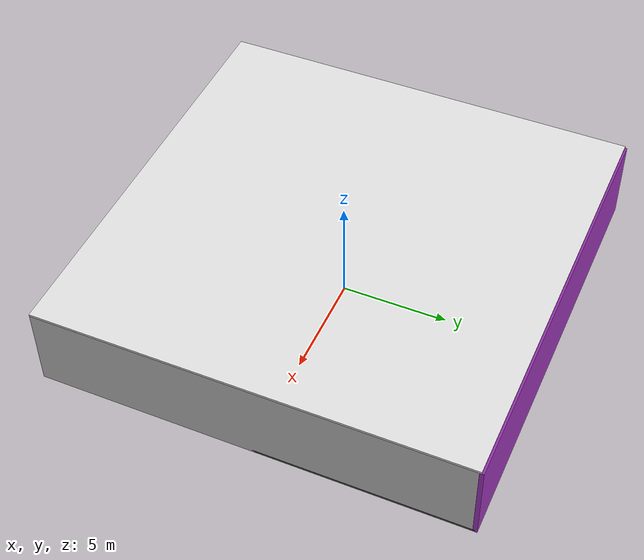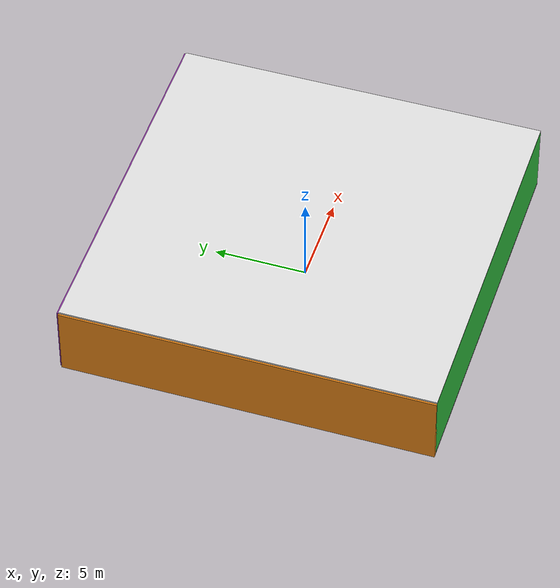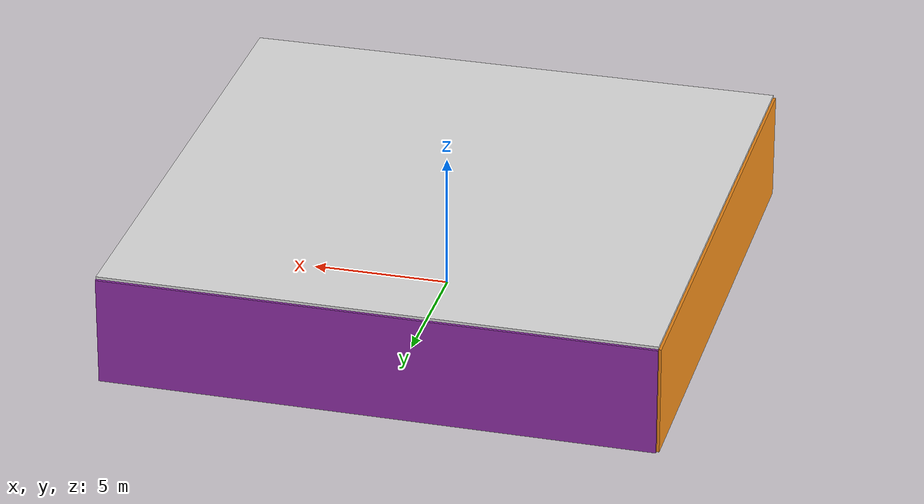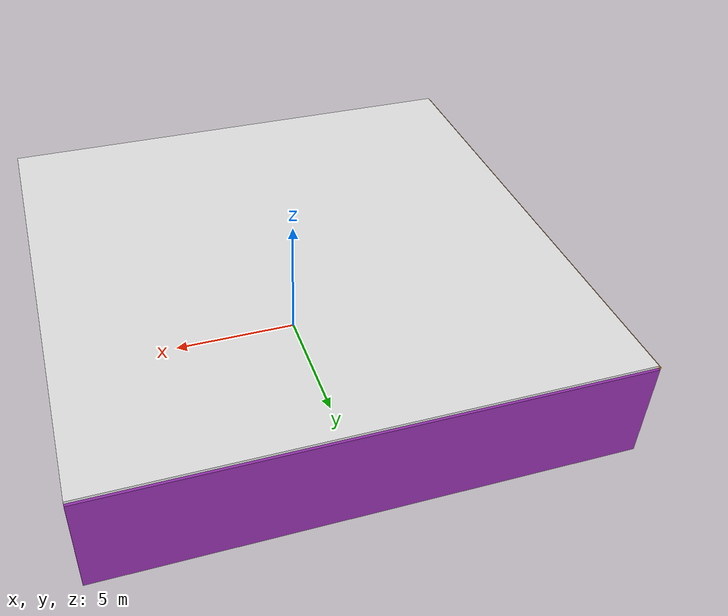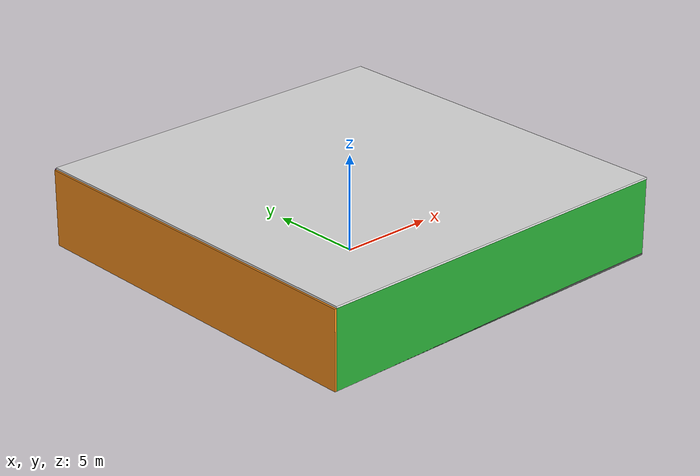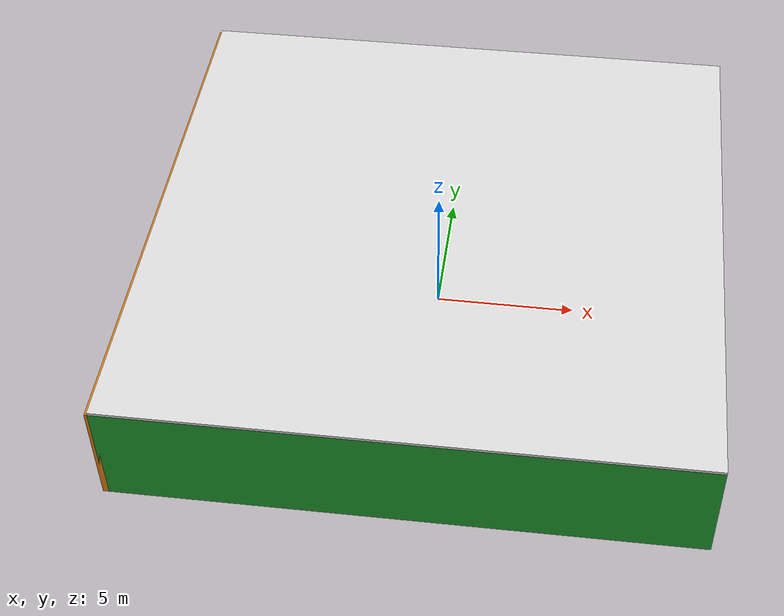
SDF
<sdf version="1.4">
 <world name="default">
  <physics type="ode">
   <max_step_size>0.001</max_step_size>
   <real_time_factor>1</real_time_factor>
   <real_time_update_rate>1000</real_time_update_rate>
   <gravity>0 0 -9.8</gravity>
  </physics>
  <scene><ambient>0.4 0.4 0.4 1</ambient><background>0.7 0.7 0.7 1</background><shadows>1</shadows></scene>
  <model name="Surrounding">
   <static>1</static>
   <link name="Ceiling">
    <collision name="Ceiling_Collision"><geometry><box><size>20 20 0.1</size></box></geometry></collision>
    <visual name="Ceiling_Visual">
     <geometry><box><size>20 20 0.1</size></box></geometry>
     <material>
      <script><uri>file://media/materials/scripts/gazebo.material</uri><name>Gazebo/WhiteGlow</name></script>
     </material>
    </visual>
    <pose>0 0 4.05 0 0 0</pose>
   </link>
   <link name="Wall_South">
    <collision name="Wall_South_Collision">
     <geometry><box><size>20 0 4</size></box></geometry>
     <pose>0 0 2 0 -0 0</pose>
    </collision>
    <visual name="Wall_South_Visual">
     <pose>0 0 2 0 -0 0</pose>
     <geometry><box><size>20 0 4</size></box></geometry>
     <material>
      <script><uri>file://media/materials/scripts/gazebo.material</uri><name>Gazebo/Green</name></script>
     </material>
    </visual>
    <velocity_decay><linear>0</linear><angular>0</angular></velocity_decay>
    <pose>0 -10 0 0 -0 0</pose>
   </link>
   <link name="Wall_East">
    <collision name="Wall_21_Collision">
     <geometry><box><size>20 0 4</size></box></geometry>
     <pose>0 0 2 0 -0 0</pose>
    </collision>
    <visual name="Wall_21_Visual">
     <pose>0 0 2 0 -0 0</pose>
     <geometry><box><size>20 0 4</size></box></geometry>
     <material>
      <script><uri>file://media/materials/scripts/gazebo.material</uri><name>Gazebo/PioneerBody</name></script>
     </material>
    </visual>
    <velocity_decay><linear>0</linear><angular>0</angular></velocity_decay>
    <pose>10 0 0 0 -0 1.5708</pose>
   </link>
   <link name="Wall_North">
    <collision name="Wall_22_Collision">
     <geometry><box><size>20 0.2 4</size></box></geometry>
     <pose>0 0 2 0 -0 0</pose>
    </collision>
    <visual name="Wall_22_Visual">
     <pose>0 0 2 0 -0 0</pose>
     <geometry><box><size>20 0.2 4</size></box></geometry>
     <material>
      <script><uri>file://media/materials/scripts/gazebo.material</uri><name>Gazebo/PurpleGlow</name></script>
     </material>
    </visual>
    <velocity_decay><linear>0</linear><angular>0</angular></velocity_decay>
    <pose>0 10 0 0 -0 0</pose>
   </link>
   <link name="Wall_West">
    <collision name="Wall_23_Collision">
     <geometry><box><size>20 0.2 4</size></box></geometry>
     <pose>0 0 2 0 -0 0</pose>
    </collision>
    <visual name="Wall_23_Visual">
     <pose>0 0 2 0 -0 0</pose>
     <geometry><box><size>20 0.2 4</size></box></geometry>
     <material>
      <script><uri>file://media/materials/scripts/gazebo.material</uri><name>Gazebo/Orange</name></script>
     </material>
    </visual>
    <velocity_decay><linear>0</linear><angular>0</angular></velocity_decay>
    <pose>-10 0 0 0 0 -1.5708</pose>
   </link>
   <link name="Ground_link">
    <collision name="collision">
     <pose>0 0 .05 0 -0 0</pose>
     <geometry><box><size>20 20 0.1</size></box></geometry>
    </collision>
    <visual name="visual">
     <pose>0 0 .05 0 -0 0</pose>
     <geometry><box><size>20 20 0.1</size></box></geometry>
     <material>
      <script><uri>file://media/materials/scripts/gazebo.material</uri><name>Gazebo/DarkGrey</name></script>
     </material>
    </visual>
   </link>
   <static>1</static>
  </model>
  <spherical_coordinates>
   <surface_model>EARTH_WGS84</surface_model>
   <latitude_deg>0</latitude_deg>
   <longitude_deg>0</longitude_deg>
   <elevation>0</elevation>
   <heading_deg>0</heading_deg>
  </spherical_coordinates>
  <light name="lightball_0" type="diffuse">
   <diffuse>0.8 0.8 0.8 1</diffuse>
   <specular>0.2 0.2 0.2 1</specular>
   <attenuation>
    <range>100</range>
    <constant>0.7</constant>
    <linear>0.01</linear>
    <quadratic>0.001</quadratic>
   </attenuation>
   <direction>-0.5 0.1 -0.9</direction>
   <pose>4.434086462 -5.10272004288 2.22046065197 0 0 0</pose>
  </light>
  <light name="lightball_1" type="diffuse">
   <diffuse>0.8 0.8 0.8 1</diffuse>
   <specular>0.2 0.2 0.2 1</specular>
   <attenuation>
    <range>100</range>
    <constant>0.7</constant>
    <linear>0.01</linear>
    <quadratic>0.001</quadratic>
   </attenuation>
   <direction>-0.5 0.1 -0.9</direction>
   <pose>-0.930266833682 -1.94840385523 1.29574739865 0 0 0</pose>
  </light>
  <light name="lightball_2" type="diffuse">
   <diffuse>0.8 0.8 0.8 1</diffuse>
   <specular>0.2 0.2 0.2 1</specular>
   <attenuation>
    <range>100</range>
    <constant>0.7</constant>
    <linear>0.01</linear>
    <quadratic>0.001</quadratic>
   </attenuation>
   <direction>-0.5 0.1 -0.9</direction>
   <pose>-4.76037663956 5.25674169824 3.18769521134 0 0 0</pose>
  </light>
  <light name="lightball_3" type="diffuse">
   <diffuse>0.8 0.8 0.8 1</diffuse>
   <specular>0.2 0.2 0.2 1</specular>
   <attenuation>
    <range>100</range>
    <constant>0.7</constant>
    <linear>0.01</linear>
    <quadratic>0.001</quadratic>
   </attenuation>
   <direction>-0.5 0.1 -0.9</direction>
   <pose>4.37968164473 0.3937400461 2.24821450799 0 0 0</pose>
  </light>
  <light name="lightball_4" type="diffuse">
   <diffuse>0.8 0.8 0.8 1</diffuse>
   <specular>0.2 0.2 0.2 1</specular>
   <attenuation>
    <range>100</range>
    <constant>0.7</constant>
    <linear>0.01</linear>
    <quadratic>0.001</quadratic>
   </attenuation>
   <direction>-0.5 0.1 -0.9</direction>
   <pose>9.96621121279 7.47724387066 3.6676418781 0 0 0</pose>
  </light>
  <light name="lightball_5" type="diffuse">
   <diffuse>0.8 0.8 0.8 1</diffuse>
   <specular>0.2 0.2 0.2 1</specular>
   <attenuation>
    <range>100</range>
    <constant>0.7</constant>
    <linear>0.01</linear>
    <quadratic>0.001</quadratic>
   </attenuation>
   <direction>-0.5 0.1 -0.9</direction>
   <pose>-7.98405248583 -9.89588225431 2.87365951378 0 0 0</pose>
  </light>
  <light name="lightball_6" type="diffuse">
   <diffuse>0.8 0.8 0.8 1</diffuse>
   <specular>0.2 0.2 0.2 1</specular>
   <attenuation>
    <range>100</range>
    <constant>0.7</constant>
    <linear>0.01</linear>
    <quadratic>0.001</quadratic>
   </attenuation>
   <direction>-0.5 0.1 -0.9</direction>
   <pose>-6.10655739324 7.24289824694 1.47318998008 0 0 0</pose>
  </light>
  <light name="lightball_7" type="diffuse">
   <diffuse>0.8 0.8 0.8 1</diffuse>
   <specular>0.2 0.2 0.2 1</specular>
   <attenuation>
    <range>100</range>
    <constant>0.7</constant>
    <linear>0.01</linear>
    <quadratic>0.001</quadratic>
   </attenuation>
   <direction>-0.5 0.1 -0.9</direction>
   <pose>-4.78182323763 -8.11121742536 1.95889639042 0 0 0</pose>
  </light>
  <light name="lightball_8" type="diffuse">
   <diffuse>0.8 0.8 0.8 1</diffuse>
   <specular>0.2 0.2 0.2 1</specular>
   <attenuation>
    <range>100</range>
    <constant>0.7</constant>
    <linear>0.01</linear>
    <quadratic>0.001</quadratic>
   </attenuation>
   <direction>-0.5 0.1 -0.9</direction>
   <pose>7.94959530435 -9.27460221445 2.07654979335 0 0 0</pose>
  </light>
  <light name="lightball_9" type="diffuse">
   <diffuse>0.8 0.8 0.8 1</diffuse>
   <specular>0.2 0.2 0.2 1</specular>
   <attenuation>
    <range>100</range>
    <constant>0.7</constant>
    <linear>0.01</linear>
    <quadratic>0.001</quadratic>
   </attenuation>
   <direction>-0.5 0.1 -0.9</direction>
   <pose>-0.661164571621 -9.702428821 1.93524335454 0 0 0</pose>
  </light>
  <light name="lightball_10" type="diffuse">
   <diffuse>0.8 0.8 0.8 1</diffuse>
   <specular>0.2 0.2 0.2 1</specular>
   <attenuation>
    <range>100</range>
    <constant>0.7</constant>
    <linear>0.01</linear>
    <quadratic>0.001</quadratic>
   </attenuation>
   <direction>-0.5 0.1 -0.9</direction>
   <pose>6.53287146504 -0.368087579483 2.43967699525 0 0 0</pose>
  </light>
  <include><uri>model://table</uri><pose>-7.18185517159 8.15224996431 0 0 0 2.0343651882</pose></include>
  <include><uri>model://cabinet</uri><pose>-3.83541078226 -7.39249130691 0 0 0 2.72656189981</pose></include>
  <include><uri>model://cabinet</uri><pose>-4.37525814957 -1.83569028725 0 0 0 1.52035434503</pose></include>
  <include>
   <uri>model://textured_shapes</uri>
   <pose>1.88276188655 4.06463795198 0 0 0 1.3772718181</pose>
  </include>
  <include><uri>model://cabinet</uri><pose>1.27055975613 8.07771157556 0 0 0 1.39901056702</pose></include>
  <include>
   <uri>model://textured_shapes</uri>
   <pose>7.87438908169 3.77023702002 0 0 0 0.802505910756</pose>
  </include>
 </world>
</sdf>

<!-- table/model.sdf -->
<sdf version="1.5">
  <model name="table">
    <static>true</static>
    <link name="link">
      <collision name="surface">
        <pose>0 0 1.0 0 0 0</pose>
        <geometry>
          <box>
            <size>1.5 0.8 0.03</size>
          </box>
        </geometry>
        <surface>
          <friction>
            <ode>
              <mu>0.6</mu>
              <mu2>0.6</mu2>
            </ode>
          </friction>
        </surface>
      </collision>
      <visual name="visual1">
        <pose>0 0 1.0 0 0 0</pose>
        <geometry>
          <box>
            <size>1.5 0.8 0.03</size>
          </box>
        </geometry>
        <material>
          <script>
            <uri>model://media/materials/scripts/gazebo.material</uri>
            <name>Gazebo/Wood</name>
          </script>
        </material>
      </visual>
      <collision name="front_left_leg">
        <pose>0.68 0.38 0.5 0 0 0</pose>
        <geometry>
          <cylinder>
            <radius>0.02</radius>
            <length>1.0</length>
          </cylinder>
        </geometry>
      </collision>
      <visual name="front_left_leg">
        <pose>0.68 0.38 0.5 0 0 0</pose>
        <geometry>
          <cylinder>
            <radius>0.02</radius>
            <length>1.0</length>
          </cylinder>
        </geometry>
        <material>
          <script>
            <uri>model://media/materials/scripts/gazebo.material</uri>
            <name>Gazebo/Grey</name>
          </script>
        </material>
      </visual>
      <collision name="front_right_leg">
        <pose>0.68 -0.38 0.5 0 0 0</pose>
        <geometry>
          <cylinder>
            <radius>0.02</radius>
            <length>1.0</length>
          </cylinder>
        </geometry>
      </collision>
      <visual name="front_right_leg">
        <pose>0.68 -0.38 0.5 0 0 0</pose>
        <geometry>
          <cylinder>
            <radius>0.02</radius>
            <length>1.0</length>
          </cylinder>
        </geometry>
        <material>
          <script>
            <uri>model://media/materials/scripts/gazebo.material</uri>
            <name>Gazebo/Grey</name>
          </script>
        </material>
      </visual>
      <collision name="back_right_leg">
        <pose>-0.68 -0.38 0.5 0 0 0</pose>
        <geometry>
          <cylinder>
            <radius>0.02</radius>
            <length>1.0</length>
          </cylinder>
        </geometry>
      </collision>
      <visual name="back_right_leg">
        <pose>-0.68 -0.38 0.5 0 0 0</pose>
        <geometry>
          <cylinder>
            <radius>0.02</radius>
            <length>1.0</length>
          </cylinder>
        </geometry>
        <material>
          <script>
            <uri>model://media/materials/scripts/gazebo.material</uri>
            <name>Gazebo/Grey</name>
          </script>
        </material>
      </visual>
      <collision name="back_left_leg">
        <pose>-0.68 0.38 0.5 0 0 0</pose>
        <geometry>
          <cylinder>
            <radius>0.02</radius>
            <length>1.0</length>
          </cylinder>
        </geometry>
      </collision>
      <visual name="back_left_leg">
        <pose>-0.68 0.38 0.5 0 0 0</pose>
        <geometry>
          <cylinder>
            <radius>0.02</radius>
            <length>1.0</length>
          </cylinder>
        </geometry>
        <material>
          <script>
            <uri>model://media/materials/scripts/gazebo.material</uri>
            <name>Gazebo/Grey</name>
          </script>
        </material>
      </visual>
    </link>
  </model>
</sdf>

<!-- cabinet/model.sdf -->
<sdf version="1.5">
  <model name="cabinet">
    <static>true</static>
    <link name="cabinet_bottom_plate">
      <inertial>
        <pose>0 0 -1 0 0 0</pose>
        <inertia>
          <ixx>2.050000</ixx>
          <ixy>0</ixy>
          <ixz>0</ixz>
          <iyy>2.050000</iyy>
          <iyz>0</iyz>
          <izz>2.050000</izz>
        </inertia>
        <mass>25.000000</mass>
      </inertial>
      <collision name="cabinet_bottom_plate_geom">
        <pose>0 0 0.010000 0 0 0</pose>
        <geometry>
          <box>
            <size>0.450000 0.450000 0.020000</size>
          </box>
        </geometry>
      </collision>
      <visual name="cabinet_bottom_plate_geom_visual">
        <pose>0 0 0.010000 0 0 0</pose>
        <geometry>
          <box>
            <size>0.450000 0.450000 0.020000</size>
          </box>
        </geometry>
        <material>
          <script>
            <uri>model://media/materials/scripts/gazebo.material</uri>
            <name>Gazebo/Wood</name>
          </script>
        </material>
      </visual>
      <collision name="cabinet_bottom_plate_geom_cabinet_back_plate">
        <pose>0.235000 0 0.510000 0 0 0</pose>
        <geometry>
          <box>
            <size>0.020000 0.450000 1.020000</size>
          </box>
        </geometry>
      </collision>
      <visual name="cabinet_bottom_plate_geom_cabinet_back_plate_visual">
        <pose>0.235000 0 0.510000 0 0 0</pose>
        <geometry>
          <box>
            <size>0.020000 0.450000 1.020000</size>
          </box>
        </geometry>
        <material>
          <script>
            <uri>model://media/materials/scripts/gazebo.material</uri>
            <name>Gazebo/Wood</name>
          </script>
        </material>
      </visual>
      <collision name="cabinet_bottom_plate_geom_cabinet_left_plate">
        <pose>0 0.235000 0.510000 0 0 0</pose>
        <geometry>
          <box>
            <size>0.450000 0.020000 1.020000</size>
          </box>
        </geometry>
      </collision>
      <visual name="cabinet_bottom_plate_geom_cabinet_left_plate_visual">
        <pose>0 0.235000 0.510000 0 0 0</pose>
        <geometry>
          <box>
            <size>0.450000 0.020000 1.020000</size>
          </box>
        </geometry>
        <material>
          <script>
            <uri>model://media/materials/scripts/gazebo.material</uri>
            <name>Gazebo/Wood</name>
          </script>
        </material>
      </visual>
      <collision name="cabinet_bottom_plate_geom_cabinet_middle_plate">
        <pose>0 0 0.510000 0 0 0</pose>
        <geometry>
          <box>
            <size>0.450000 0.450000 0.020000</size>
          </box>
        </geometry>
      </collision>
      <visual name="cabinet_bottom_plate_geom_cabinet_middle_plate_visual">
        <pose>0 0 0.510000 0 0 0</pose>
        <geometry>
          <box>
            <size>0.450000 0.450000 0.020000</size>
          </box>
        </geometry>
        <material>
          <script>
            <uri>model://media/materials/scripts/gazebo.material</uri>
            <name>Gazebo/Wood</name>
          </script>
        </material>
      </visual>
      <collision name="cabinet_bottom_plate_geom_cabinet_right_plate">
        <pose>0 -0.235000 0.510000 0 0 0</pose>
        <geometry>
          <box>
            <size>0.450000 0.020000 1.020000</size>
          </box>
        </geometry>
      </collision>
      <visual name="cabinet_bottom_plate_geom_cabinet_right_plate_visual">
        <pose>0 -0.235000 0.510000 0 0 0</pose>
        <geometry>
          <box>
            <size>0.450000 0.020000 1.020000</size>
          </box>
        </geometry>
        <material>
          <script>
            <uri>model://media/materials/scripts/gazebo.material</uri>
            <name>Gazebo/Wood</name>
          </script>
        </material>
      </visual>
      <collision name="cabinet_bottom_plate_geom_cabinet_top_plate">
        <pose>0 0 1.010000 0 0 0</pose>
        <geometry>
          <box>
            <size>0.450000 0.450000 0.020000</size>
          </box>
        </geometry>
      </collision>
      <visual name="cabinet_bottom_plate_geom_cabinet_top_plate_visual">
        <pose>0 0 1.010000 0 0 0</pose>
        <geometry>
          <box>
            <size>0.450000 0.450000 0.020000</size>
          </box>
        </geometry>
        <material>
          <script>
            <uri>model://media/materials/scripts/gazebo.material</uri>
            <name>Gazebo/Wood</name>
          </script>
        </material>
      </visual>
    </link>
  </model>
</sdf>

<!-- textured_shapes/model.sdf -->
<sdf version="1.6">
  <model name="textured_shapes">
    <pose>0 0 0.5 0 0 0</pose>
    <link name="box">
      <pose>0 -1.5 0 0 0 0</pose>
      <collision name="collision">
        <geometry>
          <box>
            <size>1 1 1</size>
          </box>
        </geometry>
      </collision>
      <visual name="visual">
        <geometry>
          <box>
            <size>1 1 1</size>
          </box>
        </geometry>
        <material>
          <script>
            <uri>model://../model_source/models/textured_shapes/materials/scripts</uri>
            <uri>model://../model_source/models/textured_shapes/materials/textures</uri>
            <name>TexturedShape/Squares</name>
          </script>
        </material>
      </visual>
    </link>
    <link name="sphere">
      <collision name="collision">
        <geometry>
          <sphere>
            <radius>0.5</radius>
          </sphere>
        </geometry>
      </collision>
      <visual name="visual">
        <geometry>
          <sphere>
            <radius>0.5</radius>
          </sphere>
        </geometry>
        <material>
          <script>
            <uri>model://../model_source/models/textured_shapes/materials/scripts</uri>
            <uri>model://../model_source/models/textured_shapes/materials/textures</uri>
            <name>TexturedShape/Squares</name>
          </script>
        </material>
      </visual>
    </link>
    <link name="cylinder">
      <pose>0 1.5 0 0 0 0</pose>
      <collision name="collision">
        <geometry>
          <cylinder>
            <radius>0.5</radius>
            <length>1</length>
          </cylinder>
        </geometry>
      </collision>
      <visual name="visual">
        <geometry>
          <cylinder>
            <radius>0.5</radius>
            <length>1</length>
          </cylinder>
        </geometry>
        <material>
          <script>
            <uri>model://../model_source/models/textured_shapes/materials/scripts</uri>
            <uri>model://../model_source/models/textured_shapes/materials/textures</uri>
            <name>TexturedShape/Squares</name>
          </script>
        </material>
      </visual>
    </link>
  </model>
</sdf>
